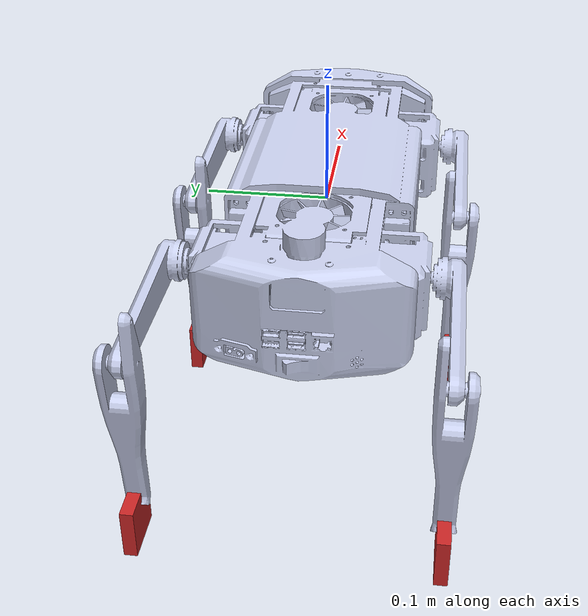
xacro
<?xml version="1.0" encoding="utf-8"?>
<robot name="dingo" xmlns:xacro="http://www.ros.org/wiki/xacro">

  <xacro:include filename="inertial_macros.xacro"/>

  <!-- base_link -->
  <link name="base_link">
    <inertial>
      <origin
        xyz="-0.1 0 0"
        rpy="0 0 0" />
      <mass value="3.0" />
        <inertia
        ixx="0.02"
        ixy="0.0"
        ixz="0.0"
        iyy="0.02"
        iyz="0.0"
        izz="0.03"/>

    </inertial>

    <visual>
      <origin
        xyz="0 0 0"
        rpy="0 0 0" />
      <geometry>
        <mesh filename="file:///home/vtcro/Desktop/Dog/dingo_ws/src/dingo_description/meshes/base_link.dae" />
      </geometry>
      <material name="">
        <color rgba="0.79216 0.81961 0.93333 1" />
      </material>
    </visual>
    <collision>
      <origin
        xyz="0 0 0"
        rpy="0 0 0" />
      <geometry>
        <mesh filename="file:///home/vtcro/Desktop/Dog/dingo_ws/src/dingo_description/meshes/base_collision.STL" />
      </geometry>
    </collision>
  </link>

  <gazebo reference="base_link">
    <mu1>1.0</mu1>
    <mu2>1.0</mu2>
    <dampingFactor>0.1</dampingFactor>
    <kp>1000000.0</kp>
    <kd>10.0</kd>
  </gazebo>

  <!-- Leg links and joints (includes) -->
  <xacro:include filename="front_left_fl_leg.xacro"/>
  <xacro:include filename="front_right_fr_leg.xacro"/>
  <xacro:include filename="rear_left_rl_leg.xacro"/>
  <xacro:include filename="rear_right_rr_leg.xacro"/>

  <!-- Transmission -->
  <transmission name="tran1">
    <type>transmission_interface/SimpleTransmission</type>
    <joint name="fr_theta1">
      <hardwareInterface>hardware_interface/PositionJointInterface</hardwareInterface>
    </joint>
    <actuator name="motor1">
      <hardwareInterface>hardware_interface/PositionJointInterface</hardwareInterface>
      <mechanicalReduction>5</mechanicalReduction>
    </actuator>
  </transmission>

  <transmission name="tran2">
    <type>transmission_interface/SimpleTransmission</type>
    <joint name="fr_theta2">
      <hardwareInterface>hardware_interface/PositionJointInterface</hardwareInterface>
    </joint>
    <actuator name="motor2">
      <hardwareInterface>hardware_interface/PositionJointInterface</hardwareInterface>
      <mechanicalReduction>5</mechanicalReduction>
    </actuator>
  </transmission>

  <transmission name="tran3">
    <type>transmission_interface/SimpleTransmission</type>
    <joint name="fr_theta3">
      <hardwareInterface>hardware_interface/PositionJointInterface</hardwareInterface>
    </joint>
    <actuator name="motor3">
      <hardwareInterface>hardware_interface/PositionJointInterface</hardwareInterface>
      <mechanicalReduction>5</mechanicalReduction>
    </actuator>
  </transmission>

  <transmission name="tran4">
    <type>transmission_interface/SimpleTransmission</type>
    <joint name="fl_theta1">
      <hardwareInterface>hardware_interface/PositionJointInterface</hardwareInterface>
    </joint>
    <actuator name="motor4">
      <hardwareInterface>hardware_interface/PositionJointInterface</hardwareInterface>
      <mechanicalReduction>5</mechanicalReduction>
    </actuator>
  </transmission>

  <transmission name="tran5">
    <type>transmission_interface/SimpleTransmission</type>
    <joint name="fl_theta2">
      <hardwareInterface>hardware_interface/PositionJointInterface</hardwareInterface>
    </joint>
    <actuator name="motor5">
      <hardwareInterface>hardware_interface/PositionJointInterface</hardwareInterface>
      <mechanicalReduction>5</mechanicalReduction>
    </actuator>
  </transmission>

  <transmission name="tran6">
    <type>transmission_interface/SimpleTransmission</type>
    <joint name="fl_theta3">
      <hardwareInterface>hardware_interface/PositionJointInterface</hardwareInterface>
    </joint>
    <actuator name="motor6">
      <hardwareInterface>hardware_interface/PositionJointInterface</hardwareInterface>
      <mechanicalReduction>5</mechanicalReduction>
    </actuator>
  </transmission>

  <transmission name="tran7">
    <type>transmission_interface/SimpleTransmission</type>
    <joint name="rr_theta1">
      <hardwareInterface>hardware_interface/PositionJointInterface</hardwareInterface>
    </joint>
    <actuator name="motor7">
      <hardwareInterface>hardware_interface/PositionJointInterface</hardwareInterface>
      <mechanicalReduction>5</mechanicalReduction>
    </actuator>
  </transmission>

  <transmission name="tran8">
    <type>transmission_interface/SimpleTransmission</type>
    <joint name="rr_theta2">
      <hardwareInterface>hardware_interface/PositionJointInterface</hardwareInterface>
    </joint>
    <actuator name="motor8">
      <hardwareInterface>hardware_interface/PositionJointInterface</hardwareInterface>
      <mechanicalReduction>5</mechanicalReduction>
    </actuator>
  </transmission>

  <transmission name="tran9">
    <type>transmission_interface/SimpleTransmission</type>
    <joint name="rr_theta3">
      <hardwareInterface>hardware_interface/PositionJointInterface</hardwareInterface>
    </joint>
    <actuator name="motor9">
      <hardwareInterface>hardware_interface/PositionJointInterface</hardwareInterface>
      <mechanicalReduction>5</mechanicalReduction>
    </actuator>
  </transmission>

  <transmission name="tran10">
    <type>transmission_interface/SimpleTransmission</type>
    <joint name="rl_theta1">
      <hardwareInterface>hardware_interface/PositionJointInterface</hardwareInterface>
    </joint>
    <actuator name="motor10">
      <hardwareInterface>hardware_interface/PositionJointInterface</hardwareInterface>
      <mechanicalReduction>5</mechanicalReduction>
    </actuator>
  </transmission>

  <transmission name="tran11">
    <type>transmission_interface/SimpleTransmission</type>
    <joint name="rl_theta2">
      <hardwareInterface>hardware_interface/PositionJointInterface</hardwareInterface>
    </joint>
    <actuator name="motor11">
      <hardwareInterface>hardware_interface/PositionJointInterface</hardwareInterface>
      <mechanicalReduction>5</mechanicalReduction>
    </actuator>
  </transmission>

  <transmission name="tran12">
    <type>transmission_interface/SimpleTransmission</type>
    <joint name="rl_theta3">
      <hardwareInterface>hardware_interface/PositionJointInterface</hardwareInterface>
    </joint>
    <actuator name="motor12">
      <hardwareInterface>hardware_interface/PositionJointInterface</hardwareInterface>
      <mechanicalReduction>5</mechanicalReduction>
    </actuator>
  </transmission>

</robot>

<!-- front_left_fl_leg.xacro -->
<robot xmlns:xacro="http://www.ros.org/wiki/xacro" >

    <!-- fl_link1 -->
    <link name="fl_link1">
        <inertial>
        <origin xyz="0 0 0"/>
        <mass value="0.30000000"/>
        <inertia ixx="0.00019300" ixy="0.00000000" ixz="0.00000000" iyy="0.00014890" iyz="0.00000000" izz="0.00012410"/>
        </inertial>
        <visual>
        <origin
            xyz="0 0 0"
            rpy="0 0 0" />
        <geometry>
            <mesh
            filename="file:///home/vtcro/Desktop/Dog/dingo_ws/src/dingo_description/meshes/FL_link1.dae" />
        </geometry>
        <material
            name="">
            <color
            rgba="0.79216 0.81961 0.93333 1" />
        </material>
        </visual>
        <collision>
        <origin
            xyz="0 0 0"
            rpy="0 0 0" />
        <geometry>
            <mesh
            filename="file:///home/vtcro/Desktop/Dog/dingo_ws/src/dingo_description/meshes/L_link1_collision.STL" />
        </geometry>
        </collision>
    </link>

    <!-- fl_link2 -->
    <link name="fl_link2">
        <inertial>
        <origin xyz="0 0 0"/>
        <mass value="0.10000000"/>
        <inertia ixx="0.00000700" ixy="0.00000000" ixz="0.00000444" iyy="0.00017260" iyz="0.00000000" izz="0.00017568"/>
        </inertial>

        <visual>
        <origin
            xyz="0 0 0"
            rpy="0 0 0" />
        <geometry>
            <mesh
            filename="file:///home/vtcro/Desktop/Dog/dingo_ws/src/dingo_description/meshes/L_link2.dae" />
        </geometry>
        <material
            name="">
            <color
            rgba="0.79216 0.81961 0.93333 1" />
        </material>
        </visual>
        <collision>
        <origin
            xyz="0 0 0"
            rpy="0 0 0" />
        <geometry>
            <mesh
            filename="file:///home/vtcro/Desktop/Dog/dingo_ws/src/dingo_description/meshes/L_link2_collision.STL" />
        </geometry>
        </collision>
    </link>

    <!-- fl_link3 -->
    <link name="fl_link3">
        <inertial>
        <origin xyz="0 0 0"/>
        <mass value="0.10000000"/>
        <inertia ixx="0.00000936" ixy="-0.00001360" ixz="-0.00000319" iyy="0.00019747" iyz="-0.00000027" izz="0.00019702"/>
        </inertial>

        <visual>
        <origin
            xyz="0 0 0"
            rpy="0 0 0" />
        <geometry>
            <mesh
            filename="file:///home/vtcro/Desktop/Dog/dingo_ws/src/dingo_description/meshes/L_link3.dae" />
        </geometry>
        <material
            name="">
            <color
            rgba="0.79216 0.81961 0.93333 1" />
        </material>
        </visual>
        <collision>
        <origin
            xyz="0 0 0"
            rpy="0 0 0" />
        <geometry>
            <mesh
            filename="file:///home/vtcro/Desktop/Dog/dingo_ws/src/dingo_description/meshes/L_link3_collision.STL" />
        </geometry>
        </collision>
    </link>

    <!-- fl_link4 -->
    <link name="fl_link4">
        <inertial>
            <origin xyz="0 0 0"/>
            <mass value="0.1000000"/>
            <inertia ixx="0.00000060" ixy="-0.00000013" ixz="0.00000000" iyy="0.00000058" iyz="0.00000000" izz="0.00000045"/>
        </inertial>

        <collision>
            <origin xyz="0 0 0" rpy="0 0 0"/>
            <geometry>
                <box size="0.04 0.04 0.01"/>
            </geometry>
        </collision>

        <visual>
            <origin xyz="0 0 0" rpy="0 0 0"/>
            <geometry>
                <box size="0.04 0.04 0.01"/>
            </geometry>
        </visual>
    </link>

    <!--JOINTS-->

    <joint name="fl_theta1" type="revolute">
        <origin
            xyz="0.11165 0.061 -0.0144"
            rpy="1.5708 0 1.5708" />
        <parent link="base_link" />
        <child link="fl_link1" />
        <axis xyz="0 0 1" />
        <limit
            lower="-0.785398"
            upper="0.785398"
            effort="100.0"
            velocity="3" />
        <joint_properties damping="1.0" friction="0.5"/>
    </joint>
    <joint name="fl_theta2" type="revolute">
        <origin
            xyz="0.0496000007984339 0.014400000013256 0"
            rpy="1.57079634307336 1.57079568414183 -1.57079631051644" />
        <parent link="fl_link1" />
        <child link="fl_link2" />
        <axis xyz="0 0 1" />
        <limit
            lower="-3"
            upper="3"
            effort="100.0"
            velocity="3" />
        <joint_properties damping="1.0" friction="0.5"/>
    </joint>
    <joint name="fl_theta3" type="revolute">
        <origin
            xyz="0.129999999999897 0 0"
            rpy="0 0 1.57079594774422" />
        <parent link="fl_link2" />
        <child link="fl_link3" />
        <axis xyz="0 0 1" />
        <limit
            lower="-3"
            upper="3"
            effort="100.0"
            velocity="3" />
        <joint_properties damping="1.0" friction="0.5"/>
    </joint>
    <joint name="fl_foot" type="fixed">
        <origin
            xyz="0.138136646352288 0 0"
            rpy="0 0 0" />
        <parent link="fl_link3" />
        <child link="fl_link4" />
        <axis xyz="0 0 0" />
    </joint>

    <!--GAZEBO-->

    <!-- FL4 friction -->
    <gazebo reference="fl_link4">
        <material>Gazebo/Red</material>
        <mu1>1.0</mu1>
        <mu2>1.0</mu2>
        <kp>1000000</kp>
        <kd>10</kd>
        <minDepth>0.001</minDepth>
        <maxVel>0.01</maxVel>
    </gazebo>

</robot>

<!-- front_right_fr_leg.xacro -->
<robot xmlns:xacro="http://www.ros.org/wiki/xacro" >

    <!-- fr_link1 -->
    <link name="fr_link1">
        <inertial>
        <origin xyz="0 0 0"/>
        <mass value="0.30000000"/>
        <inertia ixx="0.00019300" ixy="0.00000000" ixz="0.00000000" iyy="0.00014890" iyz="0.00000000" izz="0.00012410"/>
        </inertial>

        <visual>
        <origin
            xyz="0 0 0"
            rpy="0 0 0" />
        <geometry>
            <mesh
            filename="file:///home/vtcro/Desktop/Dog/dingo_ws/src/dingo_description/meshes/FR_link1.dae" />
        </geometry>
        <material
            name="">
            <color
            rgba="0.79216 0.81961 0.93333 1" />
        </material>
        </visual>
        <collision>
        <origin
            xyz="0 0 0"
            rpy="0 0 0" />
        <geometry>
            <mesh
            filename="file:///home/vtcro/Desktop/Dog/dingo_ws/src/dingo_description/meshes/R_link1_collision.STL" />
        </geometry>
        </collision>
    </link>

    <!-- fr_link2 -->
    <link name="fr_link2">
        <inertial>
        <origin xyz="0 0 0"/>
        <mass value="0.10000000"/>
        <inertia ixx="0.00000700" ixy="0.00000000" ixz="0.00000444" iyy="0.00017260" iyz="0.00000000" izz="0.00017568"/>
        </inertial>

        <visual>
        <origin
            xyz="0 0 0"
            rpy="0 0 0" />
        <geometry>
            <mesh
            filename="file:///home/vtcro/Desktop/Dog/dingo_ws/src/dingo_description/meshes/R_link2.dae" />
        </geometry>
        <material
            name="">
            <color
            rgba="0.79216 0.81961 0.93333 1" />
        </material>
        </visual>
        <collision>
        <origin
            xyz="0 0 0"
            rpy="0 0 0" />
        <geometry>
            <mesh
            filename="file:///home/vtcro/Desktop/Dog/dingo_ws/src/dingo_description/meshes/R_link2_collision.STL" />
        </geometry>
        </collision>
    </link>

    <!-- fr_link3 -->
    <link name="fr_link3">
        <inertial>
        <origin xyz="0 0 0"/>
        <mass value="0.10000000"/>
        <inertia ixx="0.00000936" ixy="-0.00001360" ixz="-0.00000319" iyy="0.00019747" iyz="-0.00000027" izz="0.00019702"/>
        </inertial>

        <visual>
        <origin
            xyz="0 0 0"
            rpy="0 0 0" />
        <geometry>
            <mesh
            filename="file:///home/vtcro/Desktop/Dog/dingo_ws/src/dingo_description/meshes/R_link3.dae" />
        </geometry>
        <material
            name="">
            <color
            rgba="0.79216 0.81961 0.93333 1" />
        </material>
        </visual>
        <collision>
        <origin
            xyz="0 0 0"
            rpy="0 0 0" />
        <geometry>
            <mesh
            filename="file:///home/vtcro/Desktop/Dog/dingo_ws/src/dingo_description/meshes/R_link3_collision.STL" />
        </geometry>
        </collision>
    </link>

    <!-- fr_link4 -->
    <link name="fr_link4">
        <inertial>
        <origin xyz="0 0 0"/>
        <mass value="0.1000000"/>
        <inertia ixx="0.00000060" ixy="-0.00000013" ixz="0.00000000" iyy="0.00000058" iyz="0.00000000" izz="0.00000045"/>
        </inertial>

        <collision>
            <origin xyz="0 0 0" rpy="0 0 0"/>
            <geometry>
                <box size="0.04 0.04 0.01"/>
            </geometry>
        </collision>

        <visual>
            <origin xyz="0 0 0" rpy="0 0 0"/>
            <geometry>
                <box size="0.04 0.04 0.01"/>
            </geometry>
        </visual>
    </link>

    <!-- JOINTS -->

    <joint
        name="fr_theta1"
        type="revolute">
        <origin
        xyz="0.111650000000002 -0.0609999999999988 -0.0144000000000242"
        rpy="1.57079632679492 0 1.5707963267949" />
        <parent
        link="base_link" />
        <child
        link="fr_link1" />
        <axis
        xyz="0 0 -1" />
        <limit
        lower="-0.785398"
        upper="0.785398"
        effort="100.0"
        velocity="3" />
        <joint_properties damping="10.0" friction="0.0"/>
    </joint>
    <joint
        name="fr_theta2"
        type="revolute">
        <origin
        xyz="-0.0495999992169121 0.0144000000000242 0"
        rpy="1.57079632309575 1.57079572077363 -1.57079633049404" />
        <parent
        link="fr_link1" />
        <child
        link="fr_link2" />
        <axis
        xyz="0 0 1" />
        <limit
        lower="-3"
        upper="3"
        effort="100.0"
        velocity="3" />
        <joint_properties damping="10.0" friction="0.0"/>
    </joint>
    <joint
        name="fr_theta3"
        type="revolute">
        <origin
        xyz="0.13000000353672 0 0"
        rpy="0 0 1.57079598438978" />
        <parent
        link="fr_link2" />
        <child
        link="fr_link3" />
        <axis
        xyz="0 0 1" />
        <limit
        lower="-3"
        upper="3"
        effort="100.0"
        velocity="3" />
        <joint_properties damping="10.0" friction="0.0"/>
    </joint>
    <joint
        name="fr_foot"
        type="fixed">
        <origin
        xyz="0.13813664635243 0 0"
        rpy="0 0 0" />
        <parent
        link="fr_link3" />
        <child
        link="fr_link4" />
        <axis
        xyz="0 0 0" />
    </joint>

    <!--GAZEBO-->

    <!-- FR4 friction -->
    <gazebo reference="fr_link4">
        <material>Gazebo/Red</material>
        <mu1>1.0</mu1>
        <mu2>1.0</mu2>
        <kp>1000000</kp>
        <kd>10</kd>
        <minDepth>0.001</minDepth>
        <maxVel>0.01</maxVel>
    </gazebo>

</robot>

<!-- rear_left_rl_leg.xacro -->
<robot xmlns:xacro="http://www.ros.org/wiki/xacro" >

    <!-- rl_link1 -->
    <link name="rl_link1">
        <inertial>
        <origin xyz="0 0 0"/>
        <mass value="0.30000000"/>
        <inertia ixx="0.00019300" ixy="0.00000000" ixz="0.00000000" iyy="0.00014890" iyz="0.00000000" izz="0.00012410"/>
        </inertial>

        <visual>
        <origin
            xyz="0 0 0"
            rpy="0 0 0" />
        <geometry>
            <mesh
            filename="file:///home/vtcro/Desktop/Dog/dingo_ws/src/dingo_description/meshes/RL_link1.dae" />
        </geometry>
        <material
            name="">
            <color
            rgba="0.79216 0.81961 0.93333 1" />
        </material>
        </visual>
        <collision>
        <origin
            xyz="0 0 0"
            rpy="0 0 0" />
        <geometry>
            <mesh
            filename="file:///home/vtcro/Desktop/Dog/dingo_ws/src/dingo_description/meshes/L_link1_collision.STL" />
        </geometry>
        </collision>
    </link>

    <!-- rl_link2 -->
    <link name="rl_link2">
        <inertial>
        <origin xyz="0 0 0"/>
        <mass value="0.10000000"/>
        <inertia ixx="0.00000700" ixy="0.00000000" ixz="0.00000444" iyy="0.00017260" iyz="0.00000000" izz="0.00017568"/>
        </inertial>

        <visual>
        <origin
            xyz="0 0 0"
            rpy="0 0 0" />
        <geometry>
            <mesh
            filename="file:///home/vtcro/Desktop/Dog/dingo_ws/src/dingo_description/meshes/L_link2.dae" />
        </geometry>
        <material
            name="">
            <color
            rgba="0.79216 0.81961 0.93333 1" />
        </material>
        </visual>
        <collision>
        <origin
            xyz="0 0 0"
            rpy="0 0 0" />
        <geometry>
            <mesh
            filename="file:///home/vtcro/Desktop/Dog/dingo_ws/src/dingo_description/meshes/L_link2_collision.STL" />
        </geometry>
        </collision>
    </link>

    <!-- rl_link3 -->
    <link name="rl_link3">
        <inertial>
        <origin xyz="0 0 0"/>
        <mass value="0.10000000"/>
        <inertia ixx="0.00000936" ixy="-0.00001360" ixz="-0.00000319" iyy="0.00019747" iyz="-0.00000027" izz="0.00019702"/>
        </inertial>

        <visual>
        <origin
            xyz="0 0 0"
            rpy="0 0 0" />
        <geometry>
            <mesh
            filename="file:///home/vtcro/Desktop/Dog/dingo_ws/src/dingo_description/meshes/L_link3.dae" />
        </geometry>
        <material
            name="">
            <color
            rgba="0.79216 0.81961 0.93333 1" />
        </material>
        </visual>
        <collision>
        <origin
            xyz="0 0 0"
            rpy="0 0 0" />
        <geometry>
            <mesh
            filename="file:///home/vtcro/Desktop/Dog/dingo_ws/src/dingo_description/meshes/L_link3_collision.STL" />
        </geometry>
        </collision>
    </link>

    <!-- rl_link4 -->
    <link name="rl_link4">
        <inertial>
        <origin xyz="0 0 0"/>
        <mass value="0.02000000"/>
        <inertia ixx="0.00000060" ixy="-0.00000013" ixz="0.00000000" iyy="0.00000058" iyz="0.00000000" izz="0.00000045"/>
        </inertial>

        <collision>
            <origin xyz="0 0 0" rpy="0 0 0"/>
            <geometry>
                <box size="0.04 0.04 0.01"/>
            </geometry>
        </collision>

        <visual>
            <origin xyz="0 0 0" rpy="0 0 0"/>
            <geometry>
                <box size="0.04 0.04 0.01"/>
            </geometry>
        </visual>

    </link>

    <!-- JOINTS -->

    <joint
        name="rl_theta1"
        type="revolute">
        <origin
        xyz="-0.11165 0.061 -0.0144"
        rpy="1.5708 0 1.5708" />
        <parent
        link="base_link" />
        <child
        link="rl_link1" />
        <axis
        xyz="0 0 1" />
        <limit
        lower="-0.785398"
        upper="0.785398"
        effort="100.0"
        velocity="3" />
        <joint_properties damping="10.0" friction="0.0"/>
    </joint>
    <joint
        name="rl_theta2"
        type="revolute">
        <origin
        xyz="0.0496000007984574 0.014399999996394 0"
        rpy="1.5707963301177 1.57079568414183 -1.57079632347209" />
        <parent
        link="rl_link1" />
        <child
        link="rl_link2" />
        <axis
        xyz="0 0 1" />
        <limit
        lower="-3"
        upper="3"
        effort="100.0"
        velocity="3" />
        <joint_properties damping="10.0" friction="0.0"/>
    </joint>
    <joint
        name="rl_theta3"
        type="revolute">
        <origin
        xyz="0.129999999994849 0 0"
        rpy="0 0 1.57079594787326" />
        <parent
        link="rl_link2" />
        <child
        link="rl_link3" />
        <axis
        xyz="0 0 0.999999999999979" />
        <limit
        lower="-3"
        upper="3"
        effort="100.0"
        velocity="3" />
        <joint_properties damping="10.0" friction="0.0"/>
    </joint>
    <joint
        name="rl_foot"
        type="fixed">
        <origin
        xyz="0.138136646352323 0 0"
        rpy="0 0 0" />
        <parent
        link="rl_link3" />
        <child
        link="rl_link4" />
        <axis
        xyz="0 0 0" />
    </joint>

    <!--GAZEBO-->

    <!-- RL4 friction -->
    <gazebo reference="rl_link4">
        <material>Gazebo/Red</material>
        <mu1>1.0</mu1>
        <mu2>1.0</mu2>
        <kp>1000000</kp>
        <kd>10</kd>
        <minDepth>0.001</minDepth>
        <maxVel>0.01</maxVel>
    </gazebo>

</robot>

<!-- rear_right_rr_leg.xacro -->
<robot xmlns:xacro="http://www.ros.org/wiki/xacro" >

    <!-- rr_link1 -->
    <link name="rr_link1">
        <inertial>
        <origin xyz="0 0 0"/>
        <mass value="0.30000000"/>
        <inertia ixx="0.00019300" ixy="0.00000000" ixz="0.00000000" iyy="0.00014890" iyz="0.00000000" izz="0.00012410"/>
        </inertial>

        <visual>
        <origin
            xyz="0 0 0"
            rpy="0 0 0" />
        <geometry>
            <mesh
            filename="file:///home/vtcro/Desktop/Dog/dingo_ws/src/dingo_description/meshes/RR_link1.dae" />
        </geometry>
        <material
            name="">
            <color
            rgba="0.79216 0.81961 0.93333 1" />
        </material>
        </visual>
        <collision>
        <origin
            xyz="0 0 0"
            rpy="0 0 0" />
        <geometry>
            <mesh
            filename="file:///home/vtcro/Desktop/Dog/dingo_ws/src/dingo_description/meshes/R_link1_collision.STL" />
        </geometry>
        </collision>
    </link>

    <!-- rr_link2 -->
    <link name="rr_link2">
        <inertial>
        <origin xyz="0 0 0"/>
        <mass value="0.10000000"/>
        <inertia ixx="0.00000700" ixy="0.00000000" ixz="0.00000444" iyy="0.00017260" iyz="0.00000000" izz="0.00017568"/>
        </inertial>

        <visual>
        <origin
            xyz="0 0 0"
            rpy="0 0 0" />
        <geometry>
            <mesh
            filename="file:///home/vtcro/Desktop/Dog/dingo_ws/src/dingo_description/meshes/R_link2.dae" />
        </geometry>
        <material
            name="">
            <color
            rgba="0.79216 0.81961 0.93333 1" />
        </material>
        </visual>
        <collision>
        <origin
            xyz="0 0 0"
            rpy="0 0 0" />
        <geometry>
            <mesh
            filename="file:///home/vtcro/Desktop/Dog/dingo_ws/src/dingo_description/meshes/R_link2_collision.STL" />
        </geometry>
        </collision>
    </link>

    <!-- rr_link3 -->
    <link name="rr_link3">
        <inertial>
        <origin xyz="0 0 0"/>
        <mass value="0.10000000"/>
        <inertia ixx="0.00000936" ixy="-0.00001360" ixz="-0.00000319" iyy="0.00019747" iyz="-0.00000027" izz="0.00019702"/>
        </inertial>

        <visual>
        <origin
            xyz="0 0 0"
            rpy="0 0 0" />
        <geometry>
            <mesh
            filename="file:///home/vtcro/Desktop/Dog/dingo_ws/src/dingo_description/meshes/R_link3.dae" />
        </geometry>
        <material
            name="">
            <color
            rgba="0.79216 0.81961 0.93333 1" />
        </material>
        </visual>
        <collision>
        <origin
            xyz="0 0 0"
            rpy="0 0 0" />
        <geometry>
            <mesh
            filename="file:///home/vtcro/Desktop/Dog/dingo_ws/src/dingo_description/meshes/R_link3_collision.STL" />
        </geometry>
        </collision>
    </link>

    <!-- rr_link4 -->
    <link name="rr_link4">
        <inertial>
        <origin xyz="0 0 0"/>
        <mass value="0.02000000"/>
        <inertia ixx="0.00000060" ixy="-0.00000013" ixz="0.00000000" iyy="0.00000058" iyz="0.00000000" izz="0.00000045"/>
        </inertial>

        <collision>
            <origin xyz="0 0 0" rpy="0 0 0"/>
            <geometry>
                <box size="0.04 0.04 0.01"/>
            </geometry>
        </collision>

        <visual>
            <origin xyz="0 0 0" rpy="0 0 0"/>
            <geometry>
                <box size="0.04 0.04 0.01"/>
            </geometry>
        </visual>
    </link>

    <!-- JOINTS -->

    <joint
        name="rr_theta1"
        type="revolute">
        <origin
        xyz="-0.111650000000003 -0.0609999999999995 -0.0144000000000178"
        rpy="1.57079632679492 0 1.5707963267949" />
        <parent
        link="base_link" />
        <child
        link="rr_link1" />
        <axis
        xyz="0 0 -1" />
        <limit
        lower="-0.785398"
        upper="0.785398"
        effort="100.0"
        velocity="3" />
        <joint_properties damping="10.0" friction="0.0"/>
    </joint>
    <joint
        name="rr_theta2"
        type="revolute">
        <origin
        xyz="-0.0495999992169147 0.0144000000000178 0"
        rpy="1.57079631992506 1.57079572077363 -1.57079633366473" />
        <parent
        link="rr_link1" />
        <child
        link="rr_link2" />
        <axis
        xyz="0 0 1" />
        <limit
        lower="-3"
        upper="3"
        effort="100.0"
        velocity="3" />
        <joint_properties damping="10.0" friction="0.0"/>
    </joint>
    <joint
        name="rr_theta3"
        type="revolute">
        <origin
        xyz="0.13000000353672 0 0"
        rpy="0 0 1.57079598438978" />
        <parent
        link="rr_link2" />
        <child
        link="rr_link3" />
        <axis
        xyz="0 0 0.999999999999998" />
        <limit
        lower="-3"
        upper="3"
        effort="100.0"
        velocity="3" />
        <joint_properties damping="10.0" friction="0.0"/>
    </joint>
    <joint
        name="rr_foot"
        type="fixed">
        <origin
        xyz="0.138136646352431 0 0"
        rpy="0 0 0" />
        <parent
        link="rr_link3" />
        <child
        link="rr_link4" />
        <axis
        xyz="0 0 0" />
    </joint>

    <!--GAZEBO-->

    <!-- RR4 friction -->
    <gazebo reference="rr_link4">
        <material>Gazebo/Red</material>
        <mu1>1.0</mu1>
        <mu2>1.0</mu2>
        <kp>1000000</kp>
        <kd>10</kd>
        <minDepth>0.001</minDepth>
        <maxVel>0.01</maxVel>
    </gazebo>

</robot>
